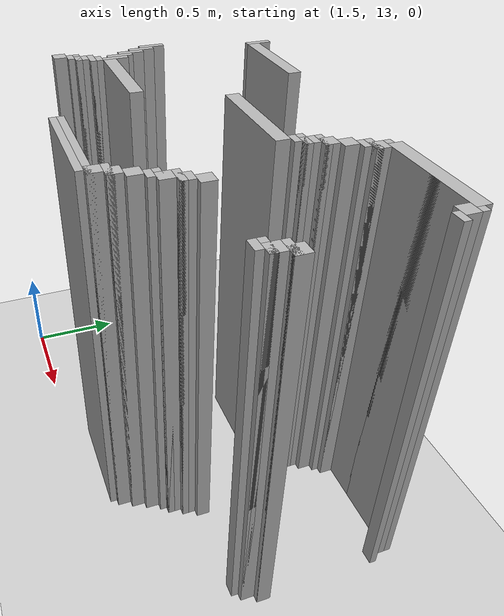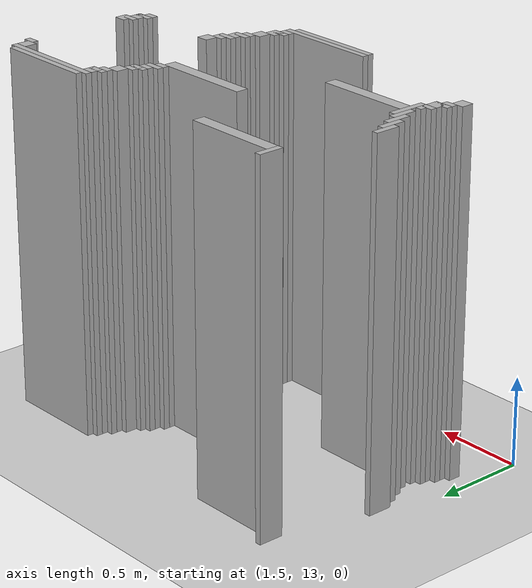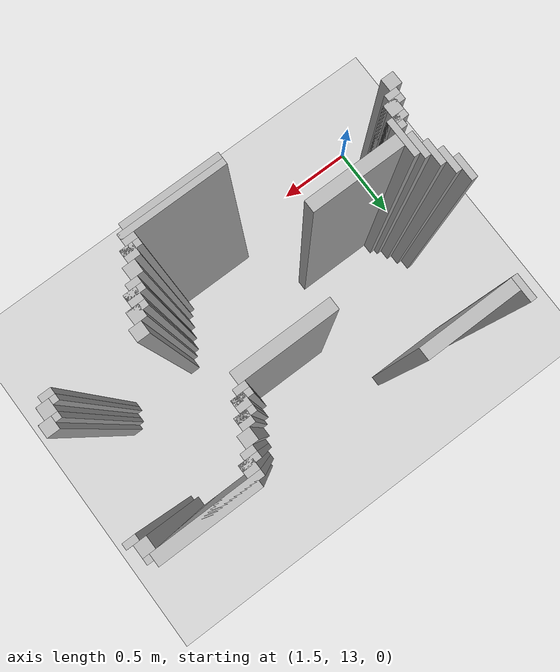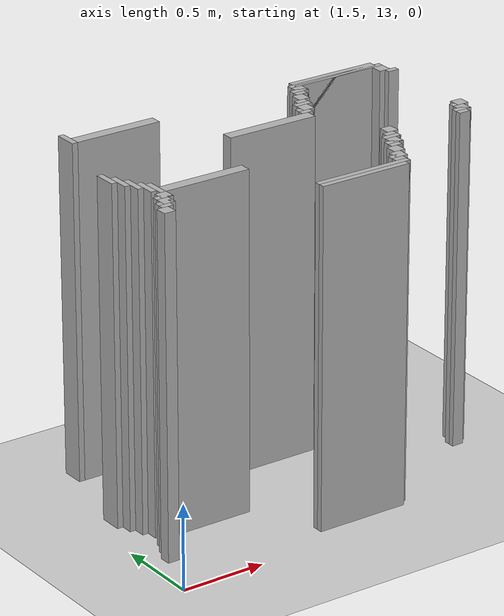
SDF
<sdf version="1.6">
 <world name="slam_world">
  <model name="ground_plane">
   <static>true</static>
   <link name="link">
    <collision name="collision">
     <geometry><plane><normal>0 0 1</normal><size>100 100</size></plane></geometry>
    </collision>
    <visual name="visual">
     <geometry><plane><normal>0 0 1</normal><size>100 100</size></plane></geometry>
     <material>
      <ambient>0.8 0.8 0.8 1</ambient>
      <diffuse>0.8 0.8 0.8 1</diffuse>
      <specular>0.8 0.8 0.8 1</specular>
     </material>
    </visual>
   </link>
  </model>
  <model name="wall_944">
   <static>true</static>
   <pose>1.75754060324826 14.443155452436194 1.0 0 0 0</pose>
   <link name="link">
    <collision name="collision">
     <geometry><box><size>0.03480278422273782 0.13921113689095127 2.0</size></box></geometry>
    </collision>
    <visual name="visual">
     <geometry><box><size>0.03480278422273782 0.13921113689095127 2.0</size></box></geometry>
     <material><ambient>0.5 0.5 0.5 1</ambient><diffuse>0.7 0.7 0.7 1</diffuse></material>
    </visual>
   </link>
  </model>
  <model name="wall_964">
   <static>true</static>
   <pose>2.0359628770301623 14.408352668213457 1.0 0 0 0</pose>
   <link name="link">
    <collision name="collision">
     <geometry><box><size>0.5220417633410672 0.06960556844547564 2.0</size></box></geometry>
    </collision>
    <visual name="visual">
     <geometry><box><size>0.5220417633410672 0.06960556844547564 2.0</size></box></geometry>
     <material><ambient>0.5 0.5 0.5 1</ambient><diffuse>0.7 0.7 0.7 1</diffuse></material>
    </visual>
   </link>
  </model>
  <model name="wall_965">
   <static>true</static>
   <pose>3.480278422273782 14.408352668213457 1.0 0 0 0</pose>
   <link name="link">
    <collision name="collision">
     <geometry><box><size>0.5568445475638051 0.06960556844547564 2.0</size></box></geometry>
    </collision>
    <visual name="visual">
     <geometry><box><size>0.5568445475638051 0.06960556844547564 2.0</size></box></geometry>
     <material><ambient>0.5 0.5 0.5 1</ambient><diffuse>0.7 0.7 0.7 1</diffuse></material>
    </visual>
   </link>
  </model>
  <model name="wall_979">
   <static>true</static>
   <pose>3.480278422273782 14.390951276102088 1.0 0 0 0</pose>
   <link name="link">
    <collision name="collision">
     <geometry><box><size>0.6264501160092807 0.03480278422273782 2.0</size></box></geometry>
    </collision>
    <visual name="visual">
     <geometry><box><size>0.6264501160092807 0.03480278422273782 2.0</size></box></geometry>
     <material><ambient>0.5 0.5 0.5 1</ambient><diffuse>0.7 0.7 0.7 1</diffuse></material>
    </visual>
   </link>
  </model>
  <model name="wall_993">
   <static>true</static>
   <pose>3.201856148491879 14.33874709976798 1.0 0 0 0</pose>
   <link name="link">
    <collision name="collision">
     <geometry><box><size>0.06960556844547564 0.06960556844547564 2.0</size></box></geometry>
    </collision>
    <visual name="visual">
     <geometry><box><size>0.06960556844547564 0.06960556844547564 2.0</size></box></geometry>
     <material><ambient>0.5 0.5 0.5 1</ambient><diffuse>0.7 0.7 0.7 1</diffuse></material>
    </visual>
   </link>
  </model>
  <model name="wall_994">
   <static>true</static>
   <pose>3.7587006960556844 14.33874709976798 1.0 0 0 0</pose>
   <link name="link">
    <collision name="collision">
     <geometry><box><size>0.06960556844547564 0.06960556844547564 2.0</size></box></geometry>
    </collision>
    <visual name="visual">
     <geometry><box><size>0.06960556844547564 0.06960556844547564 2.0</size></box></geometry>
     <material><ambient>0.5 0.5 0.5 1</ambient><diffuse>0.7 0.7 0.7 1</diffuse></material>
    </visual>
   </link>
  </model>
  <model name="wall_1008">
   <static>true</static>
   <pose>3.1844547563805103 14.321345707656612 1.0 0 0 0</pose>
   <link name="link">
    <collision name="collision">
     <geometry><box><size>0.10440835266821345 0.03480278422273782 2.0</size></box></geometry>
    </collision>
    <visual name="visual">
     <geometry><box><size>0.10440835266821345 0.03480278422273782 2.0</size></box></geometry>
     <material><ambient>0.5 0.5 0.5 1</ambient><diffuse>0.7 0.7 0.7 1</diffuse></material>
    </visual>
   </link>
  </model>
  <model name="wall_1022">
   <static>true</static>
   <pose>3.167053364269141 14.286542923433874 1.0 0 0 0</pose>
   <link name="link">
    <collision name="collision">
     <geometry><box><size>0.06960556844547564 0.03480278422273782 2.0</size></box></geometry>
    </collision>
    <visual name="visual">
     <geometry><box><size>0.06960556844547564 0.03480278422273782 2.0</size></box></geometry>
     <material><ambient>0.5 0.5 0.5 1</ambient><diffuse>0.7 0.7 0.7 1</diffuse></material>
    </visual>
   </link>
  </model>
  <model name="wall_1023">
   <static>true</static>
   <pose>3.793503480278422 14.286542923433874 1.0 0 0 0</pose>
   <link name="link">
    <collision name="collision">
     <geometry><box><size>0.06960556844547564 0.03480278422273782 2.0</size></box></geometry>
    </collision>
    <visual name="visual">
     <geometry><box><size>0.06960556844547564 0.03480278422273782 2.0</size></box></geometry>
     <material><ambient>0.5 0.5 0.5 1</ambient><diffuse>0.7 0.7 0.7 1</diffuse></material>
    </visual>
   </link>
  </model>
  <model name="wall_1032">
   <static>true</static>
   <pose>3.1322505800464038 14.234338747099768 1.0 0 0 0</pose>
   <link name="link">
    <collision name="collision">
     <geometry><box><size>0.06960556844547564 0.06960556844547564 2.0</size></box></geometry>
    </collision>
    <visual name="visual">
     <geometry><box><size>0.06960556844547564 0.06960556844547564 2.0</size></box></geometry>
     <material><ambient>0.5 0.5 0.5 1</ambient><diffuse>0.7 0.7 0.7 1</diffuse></material>
    </visual>
   </link>
  </model>
  <model name="wall_1047">
   <static>true</static>
   <pose>3.097447795823666 14.164733178654291 1.0 0 0 0</pose>
   <link name="link">
    <collision name="collision">
     <geometry><box><size>0.06960556844547564 0.06960556844547564 2.0</size></box></geometry>
    </collision>
    <visual name="visual">
     <geometry><box><size>0.06960556844547564 0.06960556844547564 2.0</size></box></geometry>
     <material><ambient>0.5 0.5 0.5 1</ambient><diffuse>0.7 0.7 0.7 1</diffuse></material>
    </visual>
   </link>
  </model>
  <model name="wall_1062">
   <static>true</static>
   <pose>3.0800464037122968 14.147331786542923 1.0 0 0 0</pose>
   <link name="link">
    <collision name="collision">
     <geometry><box><size>0.10440835266821345 0.03480278422273782 2.0</size></box></geometry>
    </collision>
    <visual name="visual">
     <geometry><box><size>0.10440835266821345 0.03480278422273782 2.0</size></box></geometry>
     <material><ambient>0.5 0.5 0.5 1</ambient><diffuse>0.7 0.7 0.7 1</diffuse></material>
    </visual>
   </link>
  </model>
  <model name="wall_1076">
   <static>true</static>
   <pose>3.062645011600928 14.095127610208817 1.0 0 0 0</pose>
   <link name="link">
    <collision name="collision">
     <geometry><box><size>0.06960556844547564 0.06960556844547564 2.0</size></box></geometry>
    </collision>
    <visual name="visual">
     <geometry><box><size>0.06960556844547564 0.06960556844547564 2.0</size></box></geometry>
     <material><ambient>0.5 0.5 0.5 1</ambient><diffuse>0.7 0.7 0.7 1</diffuse></material>
    </visual>
   </link>
  </model>
  <model name="wall_1085">
   <static>true</static>
   <pose>3.045243619489559 14.077726218097448 1.0 0 0 0</pose>
   <link name="link">
    <collision name="collision">
     <geometry><box><size>0.10440835266821345 0.03480278422273782 2.0</size></box></geometry>
    </collision>
    <visual name="visual">
     <geometry><box><size>0.10440835266821345 0.03480278422273782 2.0</size></box></geometry>
     <material><ambient>0.5 0.5 0.5 1</ambient><diffuse>0.7 0.7 0.7 1</diffuse></material>
    </visual>
   </link>
  </model>
  <model name="wall_1099">
   <static>true</static>
   <pose>3.02784222737819 14.042923433874709 1.0 0 0 0</pose>
   <link name="link">
    <collision name="collision">
     <geometry><box><size>0.06960556844547564 0.03480278422273782 2.0</size></box></geometry>
    </collision>
    <visual name="visual">
     <geometry><box><size>0.06960556844547564 0.03480278422273782 2.0</size></box></geometry>
     <material><ambient>0.5 0.5 0.5 1</ambient><diffuse>0.7 0.7 0.7 1</diffuse></material>
    </visual>
   </link>
  </model>
  <model name="wall_1108">
   <static>true</static>
   <pose>2.7494199535962878 13.990719257540603 1.0 0 0 0</pose>
   <link name="link">
    <collision name="collision">
     <geometry><box><size>0.5568445475638051 0.06960556844547564 2.0</size></box></geometry>
    </collision>
    <visual name="visual">
     <geometry><box><size>0.5568445475638051 0.06960556844547564 2.0</size></box></geometry>
     <material><ambient>0.5 0.5 0.5 1</ambient><diffuse>0.7 0.7 0.7 1</diffuse></material>
    </visual>
   </link>
  </model>
  <model name="wall_1136">
   <static>true</static>
   <pose>1.6183294663573085 13.851508120649651 1.0 0 0 0</pose>
   <link name="link">
    <collision name="collision">
     <geometry><box><size>0.03480278422273782 0.13921113689095127 2.0</size></box></geometry>
    </collision>
    <visual name="visual">
     <geometry><box><size>0.03480278422273782 0.13921113689095127 2.0</size></box></geometry>
     <material><ambient>0.5 0.5 0.5 1</ambient><diffuse>0.7 0.7 0.7 1</diffuse></material>
    </visual>
   </link>
  </model>
  <model name="wall_1166">
   <static>true</static>
   <pose>1.6531322505800463 13.781902552204176 1.0 0 0 0</pose>
   <link name="link">
    <collision name="collision">
     <geometry><box><size>0.03480278422273782 0.13921113689095127 2.0</size></box></geometry>
    </collision>
    <visual name="visual">
     <geometry><box><size>0.03480278422273782 0.13921113689095127 2.0</size></box></geometry>
     <material><ambient>0.5 0.5 0.5 1</ambient><diffuse>0.7 0.7 0.7 1</diffuse></material>
    </visual>
   </link>
  </model>
  <model name="wall_1188">
   <static>true</static>
   <pose>1.6879350348027842 13.7122969837587 1.0 0 0 0</pose>
   <link name="link">
    <collision name="collision">
     <geometry><box><size>0.03480278422273782 0.13921113689095127 2.0</size></box></geometry>
    </collision>
    <visual name="visual">
     <geometry><box><size>0.03480278422273782 0.13921113689095127 2.0</size></box></geometry>
     <material><ambient>0.5 0.5 0.5 1</ambient><diffuse>0.7 0.7 0.7 1</diffuse></material>
    </visual>
   </link>
  </model>
  <model name="wall_1203">
   <static>true</static>
   <pose>1.722737819025522 13.642691415313225 1.0 0 0 0</pose>
   <link name="link">
    <collision name="collision">
     <geometry><box><size>0.03480278422273782 0.13921113689095127 2.0</size></box></geometry>
    </collision>
    <visual name="visual">
     <geometry><box><size>0.03480278422273782 0.13921113689095127 2.0</size></box></geometry>
     <material><ambient>0.5 0.5 0.5 1</ambient><diffuse>0.7 0.7 0.7 1</diffuse></material>
    </visual>
   </link>
  </model>
  <model name="wall_1204">
   <static>true</static>
   <pose>3.793503480278422 13.677494199535962 1.0 0 0 0</pose>
   <link name="link">
    <collision name="collision">
     <geometry><box><size>0.06960556844547564 0.06960556844547564 2.0</size></box></geometry>
    </collision>
    <visual name="visual">
     <geometry><box><size>0.06960556844547564 0.06960556844547564 2.0</size></box></geometry>
     <material><ambient>0.5 0.5 0.5 1</ambient><diffuse>0.7 0.7 0.7 1</diffuse></material>
    </visual>
   </link>
  </model>
  <model name="wall_1218">
   <static>true</static>
   <pose>1.75754060324826 13.573085846867748 1.0 0 0 0</pose>
   <link name="link">
    <collision name="collision">
     <geometry><box><size>0.03480278422273782 0.2088167053364269 2.0</size></box></geometry>
    </collision>
    <visual name="visual">
     <geometry><box><size>0.03480278422273782 0.2088167053364269 2.0</size></box></geometry>
     <material><ambient>0.5 0.5 0.5 1</ambient><diffuse>0.7 0.7 0.7 1</diffuse></material>
    </visual>
   </link>
  </model>
  <model name="wall_1219">
   <static>true</static>
   <pose>3.776102088167053 13.660092807424594 1.0 0 0 0</pose>
   <link name="link">
    <collision name="collision">
     <geometry><box><size>0.10440835266821345 0.03480278422273782 2.0</size></box></geometry>
    </collision>
    <visual name="visual">
     <geometry><box><size>0.10440835266821345 0.03480278422273782 2.0</size></box></geometry>
     <material><ambient>0.5 0.5 0.5 1</ambient><diffuse>0.7 0.7 0.7 1</diffuse></material>
    </visual>
   </link>
  </model>
  <model name="wall_1232">
   <static>true</static>
   <pose>3.7587006960556844 13.607888631090487 1.0 0 0 0</pose>
   <link name="link">
    <collision name="collision">
     <geometry><box><size>0.06960556844547564 0.06960556844547564 2.0</size></box></geometry>
    </collision>
    <visual name="visual">
     <geometry><box><size>0.06960556844547564 0.06960556844547564 2.0</size></box></geometry>
     <material><ambient>0.5 0.5 0.5 1</ambient><diffuse>0.7 0.7 0.7 1</diffuse></material>
    </visual>
   </link>
  </model>
  <model name="wall_1240">
   <static>true</static>
   <pose>2.0359628770301623 13.573085846867748 1.0 0 0 0</pose>
   <link name="link">
    <collision name="collision">
     <geometry><box><size>0.5220417633410672 0.06960556844547564 2.0</size></box></geometry>
    </collision>
    <visual name="visual">
     <geometry><box><size>0.5220417633410672 0.06960556844547564 2.0</size></box></geometry>
     <material><ambient>0.5 0.5 0.5 1</ambient><diffuse>0.7 0.7 0.7 1</diffuse></material>
    </visual>
   </link>
  </model>
  <model name="wall_1241">
   <static>true</static>
   <pose>3.236658932714617 13.573085846867748 1.0 0 0 0</pose>
   <link name="link">
    <collision name="collision">
     <geometry><box><size>0.06960556844547564 0.06960556844547564 2.0</size></box></geometry>
    </collision>
    <visual name="visual">
     <geometry><box><size>0.06960556844547564 0.06960556844547564 2.0</size></box></geometry>
     <material><ambient>0.5 0.5 0.5 1</ambient><diffuse>0.7 0.7 0.7 1</diffuse></material>
    </visual>
   </link>
  </model>
  <model name="wall_1242">
   <static>true</static>
   <pose>3.741299303944315 13.590487238979117 1.0 0 0 0</pose>
   <link name="link">
    <collision name="collision">
     <geometry><box><size>0.10440835266821345 0.03480278422273782 2.0</size></box></geometry>
    </collision>
    <visual name="visual">
     <geometry><box><size>0.10440835266821345 0.03480278422273782 2.0</size></box></geometry>
     <material><ambient>0.5 0.5 0.5 1</ambient><diffuse>0.7 0.7 0.7 1</diffuse></material>
    </visual>
   </link>
  </model>
  <model name="wall_1251">
   <static>true</static>
   <pose>3.7238979118329465 13.55568445475638 1.0 0 0 0</pose>
   <link name="link">
    <collision name="collision">
     <geometry><box><size>0.06960556844547564 0.03480278422273782 2.0</size></box></geometry>
    </collision>
    <visual name="visual">
     <geometry><box><size>0.06960556844547564 0.03480278422273782 2.0</size></box></geometry>
     <material><ambient>0.5 0.5 0.5 1</ambient><diffuse>0.7 0.7 0.7 1</diffuse></material>
    </visual>
   </link>
  </model>
  <model name="wall_1260">
   <static>true</static>
   <pose>1.740139211136891 13.503480278422273 1.0 0 0 0</pose>
   <link name="link">
    <collision name="collision">
     <geometry><box><size>0.06960556844547564 0.06960556844547564 2.0</size></box></geometry>
    </collision>
    <visual name="visual">
     <geometry><box><size>0.06960556844547564 0.06960556844547564 2.0</size></box></geometry>
     <material><ambient>0.5 0.5 0.5 1</ambient><diffuse>0.7 0.7 0.7 1</diffuse></material>
    </visual>
   </link>
  </model>
  <model name="wall_1261">
   <static>true</static>
   <pose>3.201856148491879 13.503480278422273 1.0 0 0 0</pose>
   <link name="link">
    <collision name="collision">
     <geometry><box><size>0.06960556844547564 0.06960556844547564 2.0</size></box></geometry>
    </collision>
    <visual name="visual">
     <geometry><box><size>0.06960556844547564 0.06960556844547564 2.0</size></box></geometry>
     <material><ambient>0.5 0.5 0.5 1</ambient><diffuse>0.7 0.7 0.7 1</diffuse></material>
    </visual>
   </link>
  </model>
  <model name="wall_1272">
   <static>true</static>
   <pose>1.722737819025522 13.486078886310905 1.0 0 0 0</pose>
   <link name="link">
    <collision name="collision">
     <geometry><box><size>0.10440835266821345 0.03480278422273782 2.0</size></box></geometry>
    </collision>
    <visual name="visual">
     <geometry><box><size>0.10440835266821345 0.03480278422273782 2.0</size></box></geometry>
     <material><ambient>0.5 0.5 0.5 1</ambient><diffuse>0.7 0.7 0.7 1</diffuse></material>
    </visual>
   </link>
  </model>
  <model name="wall_1273">
   <static>true</static>
   <pose>3.1844547563805103 13.486078886310905 1.0 0 0 0</pose>
   <link name="link">
    <collision name="collision">
     <geometry><box><size>0.10440835266821345 0.03480278422273782 2.0</size></box></geometry>
    </collision>
    <visual name="visual">
     <geometry><box><size>0.10440835266821345 0.03480278422273782 2.0</size></box></geometry>
     <material><ambient>0.5 0.5 0.5 1</ambient><diffuse>0.7 0.7 0.7 1</diffuse></material>
    </visual>
   </link>
  </model>
  <model name="wall_1284">
   <static>true</static>
   <pose>1.705336426914153 13.433874709976797 1.0 0 0 0</pose>
   <link name="link">
    <collision name="collision">
     <geometry><box><size>0.06960556844547564 0.06960556844547564 2.0</size></box></geometry>
    </collision>
    <visual name="visual">
     <geometry><box><size>0.06960556844547564 0.06960556844547564 2.0</size></box></geometry>
     <material><ambient>0.5 0.5 0.5 1</ambient><diffuse>0.7 0.7 0.7 1</diffuse></material>
    </visual>
   </link>
  </model>
  <model name="wall_1285">
   <static>true</static>
   <pose>3.167053364269141 13.433874709976797 1.0 0 0 0</pose>
   <link name="link">
    <collision name="collision">
     <geometry><box><size>0.06960556844547564 0.06960556844547564 2.0</size></box></geometry>
    </collision>
    <visual name="visual">
     <geometry><box><size>0.06960556844547564 0.06960556844547564 2.0</size></box></geometry>
     <material><ambient>0.5 0.5 0.5 1</ambient><diffuse>0.7 0.7 0.7 1</diffuse></material>
    </visual>
   </link>
  </model>
  <model name="wall_1296">
   <static>true</static>
   <pose>1.6879350348027842 13.416473317865428 1.0 0 0 0</pose>
   <link name="link">
    <collision name="collision">
     <geometry><box><size>0.10440835266821345 0.03480278422273782 2.0</size></box></geometry>
    </collision>
    <visual name="visual">
     <geometry><box><size>0.10440835266821345 0.03480278422273782 2.0</size></box></geometry>
     <material><ambient>0.5 0.5 0.5 1</ambient><diffuse>0.7 0.7 0.7 1</diffuse></material>
    </visual>
   </link>
  </model>
  <model name="wall_1297">
   <static>true</static>
   <pose>3.1496519721577725 13.416473317865428 1.0 0 0 0</pose>
   <link name="link">
    <collision name="collision">
     <geometry><box><size>0.10440835266821345 0.03480278422273782 2.0</size></box></geometry>
    </collision>
    <visual name="visual">
     <geometry><box><size>0.10440835266821345 0.03480278422273782 2.0</size></box></geometry>
     <material><ambient>0.5 0.5 0.5 1</ambient><diffuse>0.7 0.7 0.7 1</diffuse></material>
    </visual>
   </link>
  </model>
  <model name="wall_1307">
   <static>true</static>
   <pose>1.6705336426914152 13.38167053364269 1.0 0 0 0</pose>
   <link name="link">
    <collision name="collision">
     <geometry><box><size>0.06960556844547564 0.03480278422273782 2.0</size></box></geometry>
    </collision>
    <visual name="visual">
     <geometry><box><size>0.06960556844547564 0.03480278422273782 2.0</size></box></geometry>
     <material><ambient>0.5 0.5 0.5 1</ambient><diffuse>0.7 0.7 0.7 1</diffuse></material>
    </visual>
   </link>
  </model>
  <model name="wall_1308">
   <static>true</static>
   <pose>3.1322505800464038 13.38167053364269 1.0 0 0 0</pose>
   <link name="link">
    <collision name="collision">
     <geometry><box><size>0.06960556844547564 0.03480278422273782 2.0</size></box></geometry>
    </collision>
    <visual name="visual">
     <geometry><box><size>0.06960556844547564 0.03480278422273782 2.0</size></box></geometry>
     <material><ambient>0.5 0.5 0.5 1</ambient><diffuse>0.7 0.7 0.7 1</diffuse></material>
    </visual>
   </link>
  </model>
  <model name="wall_1314">
   <static>true</static>
   <pose>1.6357308584686774 13.329466357308585 1.0 0 0 0</pose>
   <link name="link">
    <collision name="collision">
     <geometry><box><size>0.06960556844547564 0.06960556844547564 2.0</size></box></geometry>
    </collision>
    <visual name="visual">
     <geometry><box><size>0.06960556844547564 0.06960556844547564 2.0</size></box></geometry>
     <material><ambient>0.5 0.5 0.5 1</ambient><diffuse>0.7 0.7 0.7 1</diffuse></material>
    </visual>
   </link>
  </model>
  <model name="wall_1315">
   <static>true</static>
   <pose>3.097447795823666 13.329466357308585 1.0 0 0 0</pose>
   <link name="link">
    <collision name="collision">
     <geometry><box><size>0.06960556844547564 0.06960556844547564 2.0</size></box></geometry>
    </collision>
    <visual name="visual">
     <geometry><box><size>0.06960556844547564 0.06960556844547564 2.0</size></box></geometry>
     <material><ambient>0.5 0.5 0.5 1</ambient><diffuse>0.7 0.7 0.7 1</diffuse></material>
    </visual>
   </link>
  </model>
  <model name="wall_1327">
   <static>true</static>
   <pose>3.062645011600928 13.259860788863108 1.0 0 0 0</pose>
   <link name="link">
    <collision name="collision">
     <geometry><box><size>0.06960556844547564 0.06960556844547564 2.0</size></box></geometry>
    </collision>
    <visual name="visual">
     <geometry><box><size>0.06960556844547564 0.06960556844547564 2.0</size></box></geometry>
     <material><ambient>0.5 0.5 0.5 1</ambient><diffuse>0.7 0.7 0.7 1</diffuse></material>
    </visual>
   </link>
  </model>
  <model name="wall_1339">
   <static>true</static>
   <pose>3.045243619489559 13.24245939675174 1.0 0 0 0</pose>
   <link name="link">
    <collision name="collision">
     <geometry><box><size>0.10440835266821345 0.03480278422273782 2.0</size></box></geometry>
    </collision>
    <visual name="visual">
     <geometry><box><size>0.10440835266821345 0.03480278422273782 2.0</size></box></geometry>
     <material><ambient>0.5 0.5 0.5 1</ambient><diffuse>0.7 0.7 0.7 1</diffuse></material>
    </visual>
   </link>
  </model>
  <model name="wall_1350">
   <static>true</static>
   <pose>3.02784222737819 13.190255220417633 1.0 0 0 0</pose>
   <link name="link">
    <collision name="collision">
     <geometry><box><size>0.06960556844547564 0.06960556844547564 2.0</size></box></geometry>
    </collision>
    <visual name="visual">
     <geometry><box><size>0.06960556844547564 0.06960556844547564 2.0</size></box></geometry>
     <material><ambient>0.5 0.5 0.5 1</ambient><diffuse>0.7 0.7 0.7 1</diffuse></material>
    </visual>
   </link>
  </model>
  <model name="wall_1356">
   <static>true</static>
   <pose>2.7668213457076565 13.172853828306264 1.0 0 0 0</pose>
   <link name="link">
    <collision name="collision">
     <geometry><box><size>0.5916473317865429 0.03480278422273782 2.0</size></box></geometry>
    </collision>
    <visual name="visual">
     <geometry><box><size>0.5916473317865429 0.03480278422273782 2.0</size></box></geometry>
     <material><ambient>0.5 0.5 0.5 1</ambient><diffuse>0.7 0.7 0.7 1</diffuse></material>
    </visual>
   </link>
  </model>
  <model name="wall_1368">
   <static>true</static>
   <pose>2.7494199535962878 13.138051044083527 1.0 0 0 0</pose>
   <link name="link">
    <collision name="collision">
     <geometry><box><size>0.5568445475638051 0.03480278422273782 2.0</size></box></geometry>
    </collision>
    <visual name="visual">
     <geometry><box><size>0.5568445475638051 0.03480278422273782 2.0</size></box></geometry>
     <material><ambient>0.5 0.5 0.5 1</ambient><diffuse>0.7 0.7 0.7 1</diffuse></material>
    </visual>
   </link>
  </model>
 </world>
</sdf>
